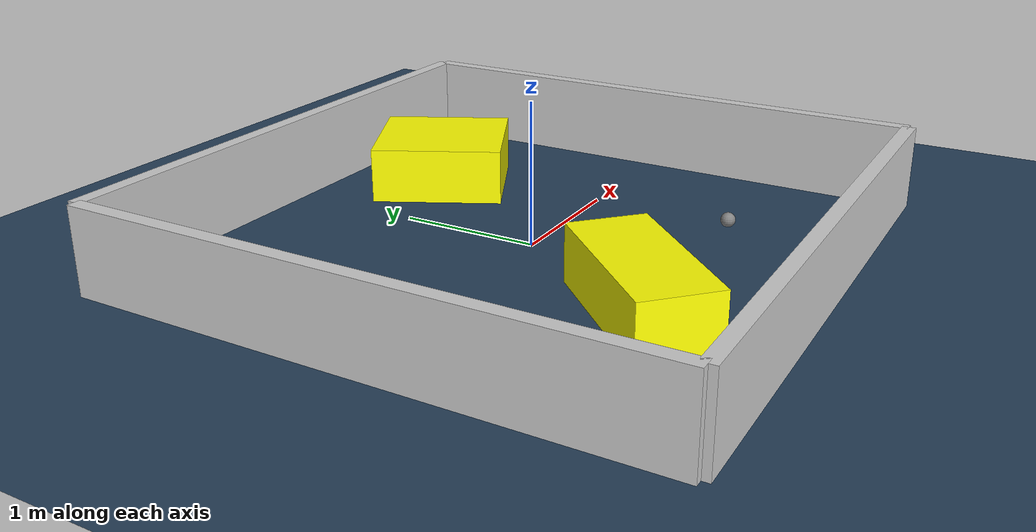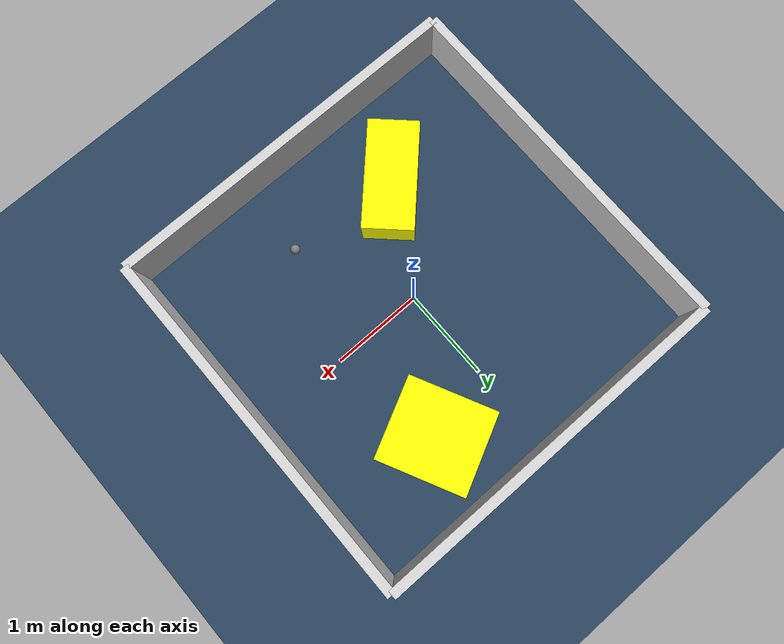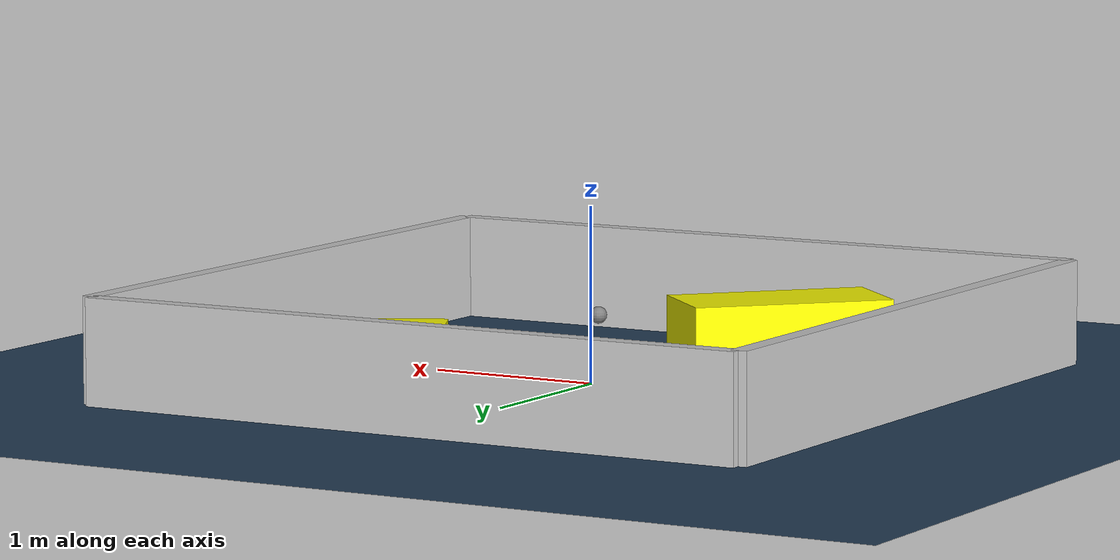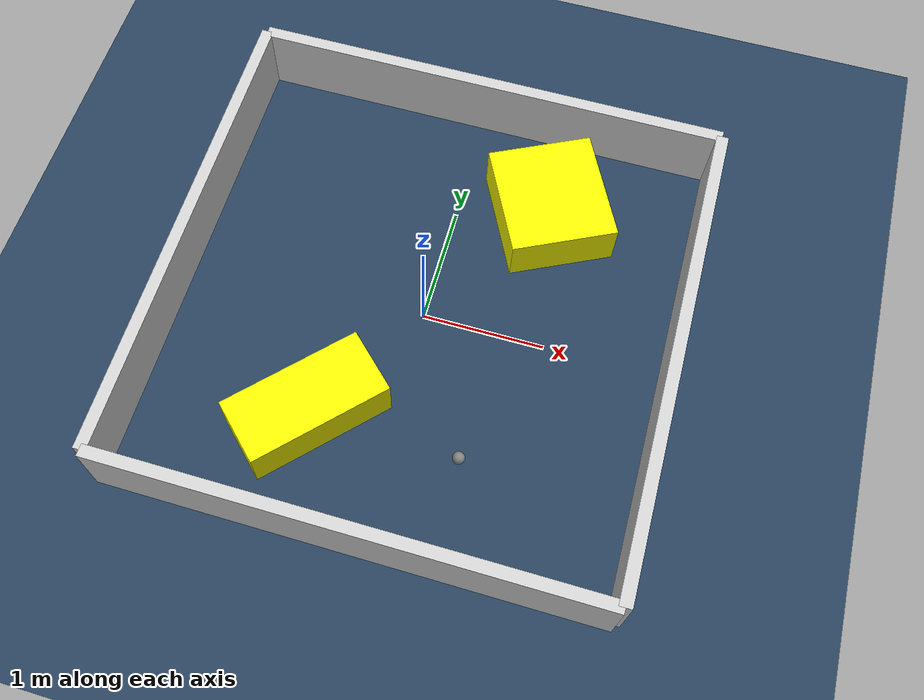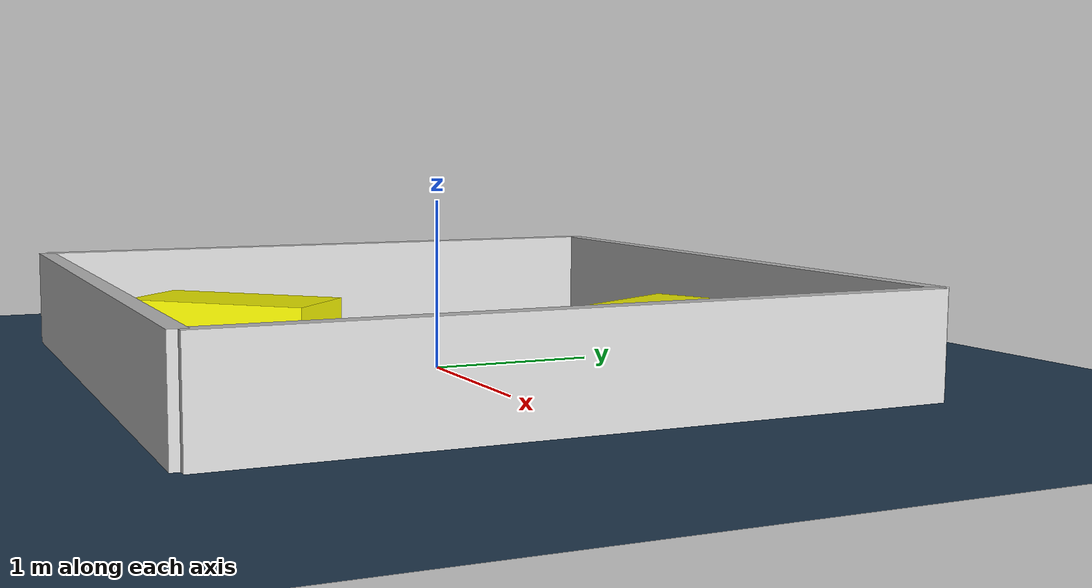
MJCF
<?xml version="1.0" ?>
<mujoco model="generated_environment">
  <option timestep="0.01" integrator="RK4" cone="elliptic"/>
  <default>
    <geom density="1"/>
  </default>
  <asset>
    <texture builtin="gradient" height="3072" rgb1="0.3 0.5 0.7" rgb2="0 0 0" type="skybox" width="512"/>
    <texture builtin="checker" height="300" mark="edge" markrgb="0.8 0.8 0.8" name="groundplane" rgb1="0.2 0.3 0.4" rgb2="0.1 0.2 0.3" type="2d" width="300"/>
    <material name="groundplane" reflectance="0.2" texrepeat="5 5" texture="groundplane" texuniform="true"/>
    <material name="robot" rgba="0.0 1.0 0.0 1"/>
  </asset>
  <worldbody>
    <light dir="0 0 -1" directional="true" pos="0 0 1.5"/>
    <geom condim="4" friction="1.0 0.005 0.001" material="groundplane" name="floor" size="0 0 0.05" type="plane"/>
    <body name="walls">
      <geom name="wall_1" condim="4" pos="-2.0 0.0 0.3" rgba="0.800000011920929 0.800000011920929 0.800000011920929 1.0" size="0.05 2.0 0.3" type="box"/>
      <geom name="wall_2" condim="4" pos="2.0 0.0 0.3" rgba="0.800000011920929 0.800000011920929 0.800000011920929 1.0" size="0.05 2.0 0.3" type="box"/>
      <geom name="wall_3" condim="4" pos="0.0 -2.0 0.3" rgba="0.800000011920929 0.800000011920929 0.800000011920929 1.0" size="2.0 0.05 0.3" type="box"/>
      <geom name="wall_4" condim="4" pos="0.0 2.0 0.3" rgba="0.800000011920929 0.800000011920929 0.800000011920929 1.0" size="2.0 0.05 0.3" type="box"/>
    </body>
    <body name="robot">
      <joint name="joint_x" type="slide" pos="0 0 0" axis="1 0 0"/>
      <joint name="joint_y" type="slide" pos="0 0 0" axis="0 1 0"/>
      <geom name="robot" type="sphere" pos="0.6120678375779018 -1.1608786518149896 0.2" size="0.05" mass="5." friction="1.0 0.005 0.0001" condim="4"/>
      <site name="sensor_ball"/>
    </body>
    <body name="obstacle_1_movable">
      <geom name="obstacle_1_movable" condim="4" pos="0.7564629367101032 1.2073834612951453 0.2" euler="0 0 26.548768365613636" friction="1.0 0.005 0.001" rgba="1 1 0 1" size="0.4388028226798749 0.47513493090049735 0.2" type="box" mass="0.1"/>
      <joint type="free"/>
    </body>
    <body name="obstacle_2_movable">
      <geom name="obstacle_2_movable" condim="4" pos="-0.6221172838247222 -1.077970384112168 0.2" euler="0 0 136.23552013085583" friction="1.0 0.005 0.001" rgba="1 1 0 1" size="0.2731461789159867 0.5880502411167079 0.2" type="box" mass="0.1"/>
      <joint type="free"/>
    </body>
  </worldbody>
  <actuator>
    <motor name="actuator_x" joint="joint_x" gear="1" ctrlrange="-1 1"/>
    <motor name="actuator_y" joint="joint_y" gear="1" ctrlrange="-1 1"/>
  </actuator>
</mujoco>
